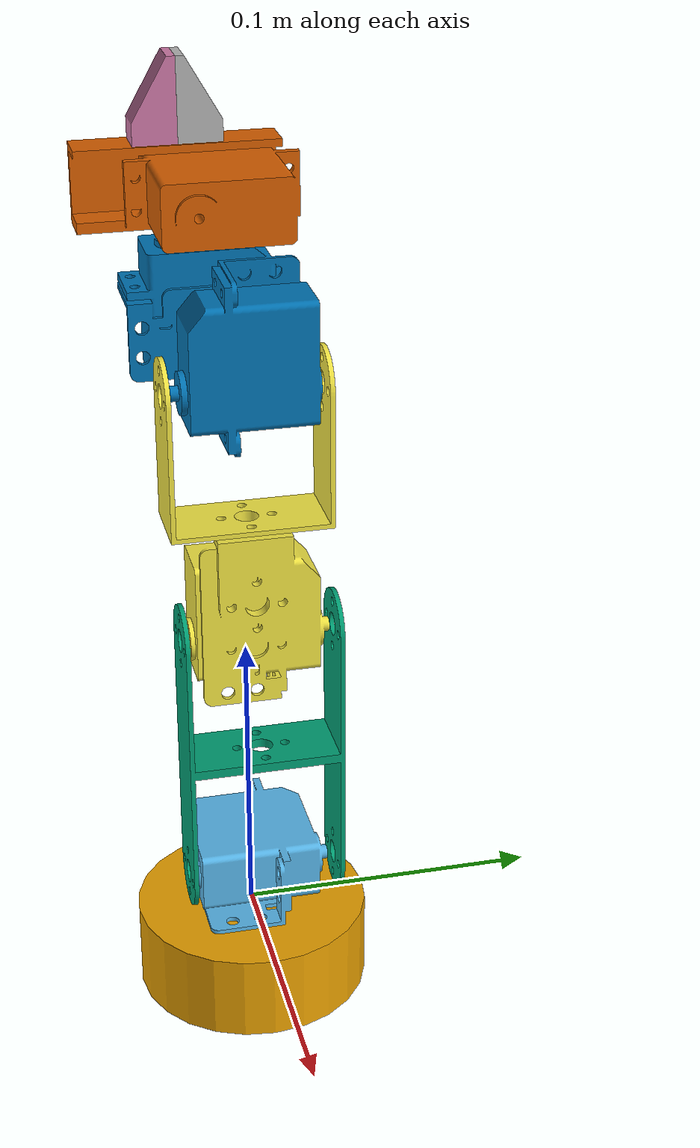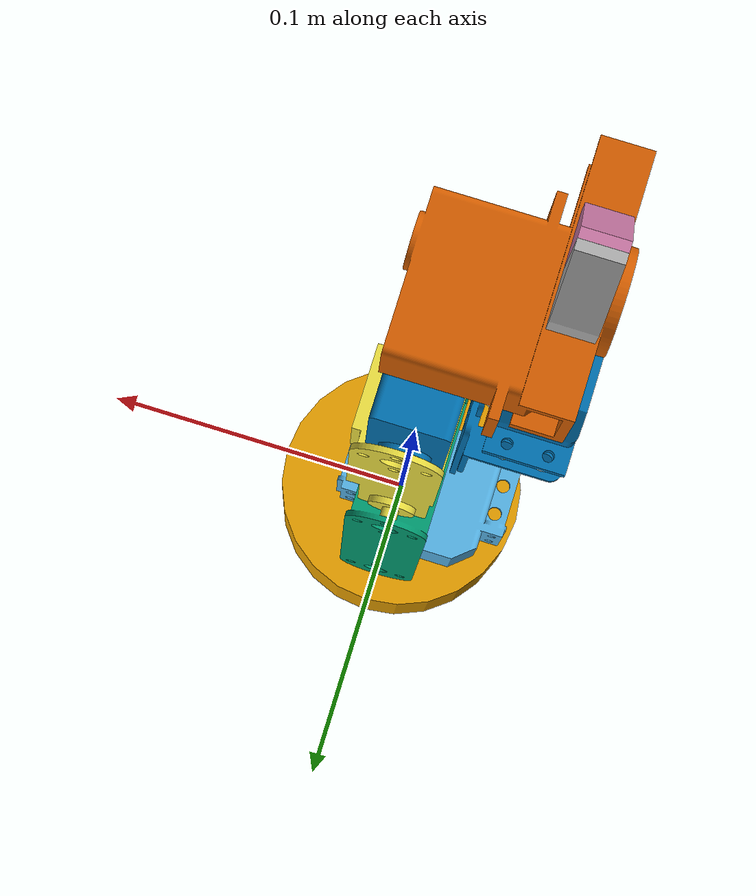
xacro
<?xml version="1.0"?>
<robot xmlns:xacro="http://www.ros.org/wiki/xacro" name="robot_arm">
    <xacro:arg name="initial_positions_file" default="initial_positions.yaml" />

    <!-- Import robot_arm urdf file -->
    <xacro:include filename="$(find robot_arm_description)/urdf/robot_arm.urdf" />

    <!-- Import control_xacro -->
    <xacro:include filename="robot_arm.ros2_control.xacro" />

    <xacro:robot_arm_ros2_control name="RobotArmPositionOnlyHardware" initial_positions_file="$(arg initial_positions_file)"/>

</robot>

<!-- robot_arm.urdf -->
<robot name="robot_arm">
    <link name="base">
        <visual>
            <origin xyz="0 0 -0.015" rpy="0 0 0"/>
            <geometry>
                <cylinder radius="0.04" length="0.03"/>
            </geometry>
        </visual>
        <collision>
            <origin xyz="0 0 -0.015" rpy="0 0 0"/>
            <geometry>
                <cylinder radius="0.04" length="0.03"/>
            </geometry>
        </collision>
    </link>
    <link name="upper_arm">
        <visual>
            <origin xyz="0 0 0" rpy="0 0 0"/>
            <geometry>
                <mesh filename="package://robot_arm_description/models/upper_arm.stl"/>
            </geometry>
        </visual>
        <collision>
            <origin xyz="0 0 0" rpy="0 0 0"/>
            <geometry>
                <mesh filename="package://robot_arm_description/models/upper_arm.stl"/>
            </geometry>
        </collision>
    </link>
    <link name="arm">
        <visual>
            <origin xyz="0 0 0" rpy="0 0 0"/>
            <geometry>
                <mesh filename="package://robot_arm_description/models/arm.stl"/>
            </geometry>
        </visual>
        <collision>
            <origin xyz="0 0 0" rpy="0 0 0"/>
            <geometry>
                <mesh filename="package://robot_arm_description/models/arm.stl"/>
            </geometry>
        </collision>
    </link>
    <link name="forearm">
        <visual>
            <origin xyz="0 0.001 0" rpy="0 0 0"/>
            <geometry>
                <mesh filename="package://robot_arm_description/models/forearm.stl"/>
            </geometry>
        </visual>
        <collision>
            <origin xyz="0 0.001 0" rpy="0 0 0"/>
            <geometry>
                <mesh filename="package://robot_arm_description/models/forearm.stl"/>
            </geometry>
        </collision>
    </link>
    <link name="hand">
        <visual>
            <origin xyz="0 0 0" rpy="0 0 0"/>
            <geometry>
                <mesh filename="package://robot_arm_description/models/hand.stl"/>
            </geometry>
        </visual>
        <collision>
            <origin xyz="0 0 0" rpy="0 0 0"/>
            <geometry>
                <mesh filename="package://robot_arm_description/models/hand.stl"/>
            </geometry>
        </collision>
    </link>
    <link name="carpals">
        <visual>
            <origin xyz="0 0 0" rpy="0 0 0"/>
            <geometry>
                <mesh filename="package://robot_arm_description/models/carpals.stl"/>
            </geometry>
        </visual>
        <collision>
            <origin xyz="0 0 0" rpy="0 0 0"/>
            <geometry>
                <mesh filename="package://robot_arm_description/models/carpals.stl"/>
            </geometry>
        </collision>
    </link>
    <link name="left_finger">
        <visual>
            <origin xyz="0 0 0" rpy="0 0 0"/>
            <geometry>
                <mesh filename="package://robot_arm_description/models/finger.stl"/>
            </geometry>
        </visual>
        <collision>
            <origin xyz="0 0 0" rpy="0 0 0"/>
            <geometry>
                <mesh filename="package://robot_arm_description/models/finger.stl"/>
            </geometry>
        </collision>
    </link>
    <link name="right_finger">
        <visual>
            <origin xyz="0 0 0" rpy="0 0 3.1415"/>
            <geometry>
                <mesh filename="package://robot_arm_description/models/finger.stl"/>
            </geometry>
        </visual>
        <collision>
            <origin xyz="0 0 0" rpy="0 0 3.1415"/>
            <geometry>
                <mesh filename="package://robot_arm_description/models/finger.stl"/>
            </geometry>
        </collision>
    </link>
    <link name="tcp_link"/>
    <joint name="shoulder_psi" type="continuous">
        <parent link="base"/>
        <child link="upper_arm"/>
        <origin xyz="0 0 0"/>
        <axis xyz = "0 0 1"/>
    </joint>
    <joint name="shoulder_theta" type="continuous">
        <parent link="upper_arm"/>
        <child link="arm"/>
        <origin xyz="0 0 0.014195"/>
        <axis xyz = "0 1 0"/>
    </joint>
    <joint name="elbow" type="continuous">
        <parent link="arm"/>
        <child link="forearm"/>
        <origin xyz="0 0 0.0912"/>
        <axis xyz = "0 -1 0"/>
    </joint>
    <joint name="wrist_theta" type="continuous">
        <parent link="forearm"/>
        <child link="hand"/>
        <origin xyz="0 0 0.08698"/>
        <axis xyz = "0 1 0"/>
    </joint>
    <joint name="wrist_psi" type="continuous">
        <parent link="hand"/>
        <child link="carpals"/>
        <origin xyz="-0.0284 -0.013296 0.041274"/>
        <axis xyz = "0 0 1"/>
    </joint>
    <joint name="tcp_joint" type="fixed">
        <parent link="carpals"/>
        <child link="tcp_link"/>
        <origin xyz="0 0 0.06"/>
        <axis xyz = "0 0 1"/>
    </joint>
    <joint name="left_knuckle" type="prismatic">
        <limit lower="0" upper="0.03" velocity="1" effort="1"/>
        <parent link="carpals"/>
        <child link="left_finger"/>
        <origin xyz="0 0 0.031"/>
        <axis xyz = "0 -1 0"/>
    </joint>
    <joint name="right_knuckle" type="prismatic">
        <limit lower="0" upper="0.03" velocity="1" effort="1"/>
        <mimic joint="left_knuckle"/>
        <parent link="carpals"/>
        <child link="right_finger"/>
        <origin xyz="0 0 0.031"/>
        <axis xyz = "0 1 0"/>
    </joint>
</robot>
